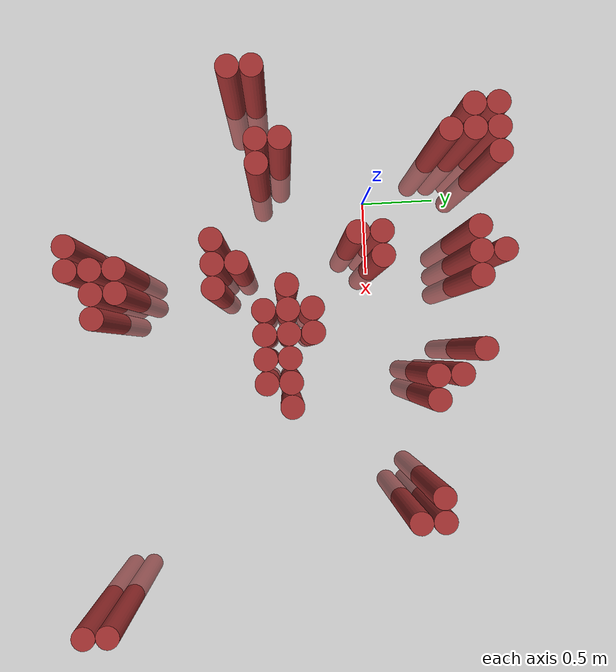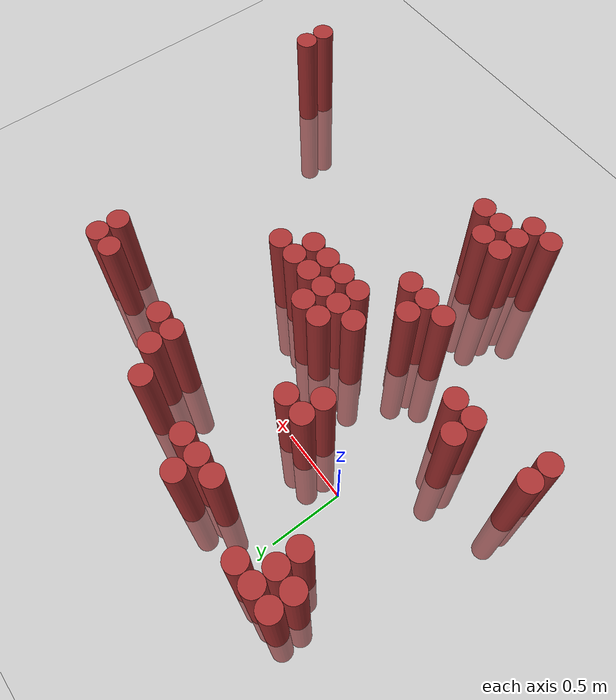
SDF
<sdf version="1.6">
 <world name="default">
  <model name="ground_plane">
   <static>1</static>
   <link name="link">
    <collision name="collision">
     <geometry><plane><normal>0 0 1</normal><size>100 100</size></plane></geometry>
     <surface><friction><ode><mu>100</mu><mu2>50</mu2></ode></friction></surface>
    </collision>
    <visual name="visual">
     <cast_shadows>0</cast_shadows>
     <geometry><plane><normal>0 0 1</normal><size>100 100</size></plane></geometry>
     <material>
      <script><uri>file://media/materials/scripts/gazebo.material</uri><name>Gazebo/Grey</name></script>
     </material>
    </visual>
   </link>
  </model>
  <model name="unit_cylinder_402">
   <static>1</static>
   <pose>-0.725000 -0.875000 0.000000 0.000000 0.000000 0.000000</pose>
   <link name="link">
    <inertial>
     <mass>1</mass>
     <inertia><ixx>0.145833</ixx><ixy>0</ixy><ixz>0</ixz><iyy>0.145833</iyy><iyz>0</iyz><izz>0.125</izz></inertia>
    </inertial>
    <collision name="collision">
     <geometry><cylinder><radius>0.075000</radius><length>1.5</length></cylinder></geometry>
    </collision>
    <visual name="visual">
     <geometry><cylinder><radius>0.075000</radius><length>1.5</length></cylinder></geometry>
     <material>
      <ambient>0.648000 0.192000 0.192000 1</ambient>
      <diffuse>0.648000 0.192000 0.192000 1</diffuse>
     </material>
     <material>
      <script><name>Gazebo/Grey</name><uri>file://media/materials/scripts/gazebo.material</uri></script>
     </material>
    </visual>
   </link>
  </model>
  <model name="unit_cylinder_403">
   <static>1</static>
   <pose>-0.725000 -0.725000 0.000000 0.000000 0.000000 0.000000</pose>
   <link name="link">
    <inertial>
     <mass>1</mass>
     <inertia><ixx>0.145833</ixx><ixy>0</ixy><ixz>0</ixz><iyy>0.145833</iyy><iyz>0</iyz><izz>0.125</izz></inertia>
    </inertial>
    <collision name="collision">
     <geometry><cylinder><radius>0.075000</radius><length>1.5</length></cylinder></geometry>
    </collision>
    <visual name="visual">
     <geometry><cylinder><radius>0.075000</radius><length>1.5</length></cylinder></geometry>
     <material>
      <ambient>0.648000 0.192000 0.192000 1</ambient>
      <diffuse>0.648000 0.192000 0.192000 1</diffuse>
     </material>
     <material>
      <script><name>Gazebo/Grey</name><uri>file://media/materials/scripts/gazebo.material</uri></script>
     </material>
    </visual>
   </link>
  </model>
  <model name="unit_cylinder_405">
   <static>1</static>
   <pose>-0.425000 0.625000 0.000000 0.000000 0.000000 0.000000</pose>
   <link name="link">
    <inertial>
     <mass>1</mass>
     <inertia><ixx>0.145833</ixx><ixy>0</ixy><ixz>0</ixz><iyy>0.145833</iyy><iyz>0</iyz><izz>0.125</izz></inertia>
    </inertial>
    <collision name="collision">
     <geometry><cylinder><radius>0.075000</radius><length>1.5</length></cylinder></geometry>
    </collision>
    <visual name="visual">
     <geometry><cylinder><radius>0.075000</radius><length>1.5</length></cylinder></geometry>
     <material>
      <ambient>0.648000 0.192000 0.192000 1</ambient>
      <diffuse>0.648000 0.192000 0.192000 1</diffuse>
     </material>
     <material>
      <script><name>Gazebo/Grey</name><uri>file://media/materials/scripts/gazebo.material</uri></script>
     </material>
    </visual>
   </link>
  </model>
  <model name="unit_cylinder_406">
   <static>1</static>
   <pose>-0.425000 0.775000 0.000000 0.000000 0.000000 0.000000</pose>
   <link name="link">
    <inertial>
     <mass>1</mass>
     <inertia><ixx>0.145833</ixx><ixy>0</ixy><ixz>0</ixz><iyy>0.145833</iyy><iyz>0</iyz><izz>0.125</izz></inertia>
    </inertial>
    <collision name="collision">
     <geometry><cylinder><radius>0.075000</radius><length>1.5</length></cylinder></geometry>
    </collision>
    <visual name="visual">
     <geometry><cylinder><radius>0.075000</radius><length>1.5</length></cylinder></geometry>
     <material>
      <ambient>0.648000 0.192000 0.192000 1</ambient>
      <diffuse>0.648000 0.192000 0.192000 1</diffuse>
     </material>
     <material>
      <script><name>Gazebo/Grey</name><uri>file://media/materials/scripts/gazebo.material</uri></script>
     </material>
    </visual>
   </link>
  </model>
  <model name="unit_cylinder_410">
   <static>1</static>
   <pose>-0.275000 -0.725000 0.000000 0.000000 0.000000 0.000000</pose>
   <link name="link">
    <inertial>
     <mass>1</mass>
     <inertia><ixx>0.145833</ixx><ixy>0</ixy><ixz>0</ixz><iyy>0.145833</iyy><iyz>0</iyz><izz>0.125</izz></inertia>
    </inertial>
    <collision name="collision">
     <geometry><cylinder><radius>0.075000</radius><length>1.5</length></cylinder></geometry>
    </collision>
    <visual name="visual">
     <geometry><cylinder><radius>0.075000</radius><length>1.5</length></cylinder></geometry>
     <material>
      <ambient>0.648000 0.192000 0.192000 1</ambient>
      <diffuse>0.648000 0.192000 0.192000 1</diffuse>
     </material>
     <material>
      <script><name>Gazebo/Grey</name><uri>file://media/materials/scripts/gazebo.material</uri></script>
     </material>
    </visual>
   </link>
  </model>
  <model name="unit_cylinder_411">
   <static>1</static>
   <pose>-0.275000 -0.575000 0.000000 0.000000 0.000000 0.000000</pose>
   <link name="link">
    <inertial>
     <mass>1</mass>
     <inertia><ixx>0.145833</ixx><ixy>0</ixy><ixz>0</ixz><iyy>0.145833</iyy><iyz>0</iyz><izz>0.125</izz></inertia>
    </inertial>
    <collision name="collision">
     <geometry><cylinder><radius>0.075000</radius><length>1.5</length></cylinder></geometry>
    </collision>
    <visual name="visual">
     <geometry><cylinder><radius>0.075000</radius><length>1.5</length></cylinder></geometry>
     <material>
      <ambient>0.648000 0.192000 0.192000 1</ambient>
      <diffuse>0.648000 0.192000 0.192000 1</diffuse>
     </material>
     <material>
      <script><name>Gazebo/Grey</name><uri>file://media/materials/scripts/gazebo.material</uri></script>
     </material>
    </visual>
   </link>
  </model>
  <model name="unit_cylinder_412">
   <static>1</static>
   <pose>-0.275000 0.475000 0.000000 0.000000 0.000000 0.000000</pose>
   <link name="link">
    <inertial>
     <mass>1</mass>
     <inertia><ixx>0.145833</ixx><ixy>0</ixy><ixz>0</ixz><iyy>0.145833</iyy><iyz>0</iyz><izz>0.125</izz></inertia>
    </inertial>
    <collision name="collision">
     <geometry><cylinder><radius>0.075000</radius><length>1.5</length></cylinder></geometry>
    </collision>
    <visual name="visual">
     <geometry><cylinder><radius>0.075000</radius><length>1.5</length></cylinder></geometry>
     <material>
      <ambient>0.648000 0.192000 0.192000 1</ambient>
      <diffuse>0.648000 0.192000 0.192000 1</diffuse>
     </material>
     <material>
      <script><name>Gazebo/Grey</name><uri>file://media/materials/scripts/gazebo.material</uri></script>
     </material>
    </visual>
   </link>
  </model>
  <model name="unit_cylinder_413">
   <static>1</static>
   <pose>-0.275000 0.625000 0.000000 0.000000 0.000000 0.000000</pose>
   <link name="link">
    <inertial>
     <mass>1</mass>
     <inertia><ixx>0.145833</ixx><ixy>0</ixy><ixz>0</ixz><iyy>0.145833</iyy><iyz>0</iyz><izz>0.125</izz></inertia>
    </inertial>
    <collision name="collision">
     <geometry><cylinder><radius>0.075000</radius><length>1.5</length></cylinder></geometry>
    </collision>
    <visual name="visual">
     <geometry><cylinder><radius>0.075000</radius><length>1.5</length></cylinder></geometry>
     <material>
      <ambient>0.648000 0.192000 0.192000 1</ambient>
      <diffuse>0.648000 0.192000 0.192000 1</diffuse>
     </material>
     <material>
      <script><name>Gazebo/Grey</name><uri>file://media/materials/scripts/gazebo.material</uri></script>
     </material>
    </visual>
   </link>
  </model>
  <model name="unit_cylinder_414">
   <static>1</static>
   <pose>-0.275000 0.775000 0.000000 0.000000 0.000000 0.000000</pose>
   <link name="link">
    <inertial>
     <mass>1</mass>
     <inertia><ixx>0.145833</ixx><ixy>0</ixy><ixz>0</ixz><iyy>0.145833</iyy><iyz>0</iyz><izz>0.125</izz></inertia>
    </inertial>
    <collision name="collision">
     <geometry><cylinder><radius>0.075000</radius><length>1.5</length></cylinder></geometry>
    </collision>
    <visual name="visual">
     <geometry><cylinder><radius>0.075000</radius><length>1.5</length></cylinder></geometry>
     <material>
      <ambient>0.648000 0.192000 0.192000 1</ambient>
      <diffuse>0.648000 0.192000 0.192000 1</diffuse>
     </material>
     <material>
      <script><name>Gazebo/Grey</name><uri>file://media/materials/scripts/gazebo.material</uri></script>
     </material>
    </visual>
   </link>
  </model>
  <model name="unit_cylinder_417">
   <static>1</static>
   <pose>-0.125000 -0.725000 0.000000 0.000000 0.000000 0.000000</pose>
   <link name="link">
    <inertial>
     <mass>1</mass>
     <inertia><ixx>0.145833</ixx><ixy>0</ixy><ixz>0</ixz><iyy>0.145833</iyy><iyz>0</iyz><izz>0.125</izz></inertia>
    </inertial>
    <collision name="collision">
     <geometry><cylinder><radius>0.075000</radius><length>1.5</length></cylinder></geometry>
    </collision>
    <visual name="visual">
     <geometry><cylinder><radius>0.075000</radius><length>1.5</length></cylinder></geometry>
     <material>
      <ambient>0.648000 0.192000 0.192000 1</ambient>
      <diffuse>0.648000 0.192000 0.192000 1</diffuse>
     </material>
     <material>
      <script><name>Gazebo/Grey</name><uri>file://media/materials/scripts/gazebo.material</uri></script>
     </material>
    </visual>
   </link>
  </model>
  <model name="unit_cylinder_418">
   <static>1</static>
   <pose>-0.125000 0.775000 0.000000 0.000000 0.000000 0.000000</pose>
   <link name="link">
    <inertial>
     <mass>1</mass>
     <inertia><ixx>0.145833</ixx><ixy>0</ixy><ixz>0</ixz><iyy>0.145833</iyy><iyz>0</iyz><izz>0.125</izz></inertia>
    </inertial>
    <collision name="collision">
     <geometry><cylinder><radius>0.075000</radius><length>1.5</length></cylinder></geometry>
    </collision>
    <visual name="visual">
     <geometry><cylinder><radius>0.075000</radius><length>1.5</length></cylinder></geometry>
     <material>
      <ambient>0.648000 0.192000 0.192000 1</ambient>
      <diffuse>0.648000 0.192000 0.192000 1</diffuse>
     </material>
     <material>
      <script><name>Gazebo/Grey</name><uri>file://media/materials/scripts/gazebo.material</uri></script>
     </material>
    </visual>
   </link>
  </model>
  <model name="unit_cylinder_424">
   <static>1</static>
   <pose>0.325000 -1.925000 0.000000 0.000000 0.000000 0.000000</pose>
   <link name="link">
    <inertial>
     <mass>1</mass>
     <inertia><ixx>0.145833</ixx><ixy>0</ixy><ixz>0</ixz><iyy>0.145833</iyy><iyz>0</iyz><izz>0.125</izz></inertia>
    </inertial>
    <collision name="collision">
     <geometry><cylinder><radius>0.075000</radius><length>1.5</length></cylinder></geometry>
    </collision>
    <visual name="visual">
     <geometry><cylinder><radius>0.075000</radius><length>1.5</length></cylinder></geometry>
     <material>
      <ambient>0.648000 0.192000 0.192000 1</ambient>
      <diffuse>0.648000 0.192000 0.192000 1</diffuse>
     </material>
     <material>
      <script><name>Gazebo/Grey</name><uri>file://media/materials/scripts/gazebo.material</uri></script>
     </material>
    </visual>
   </link>
  </model>
  <model name="unit_cylinder_425">
   <static>1</static>
   <pose>0.325000 -1.025000 0.000000 0.000000 0.000000 0.000000</pose>
   <link name="link">
    <inertial>
     <mass>1</mass>
     <inertia><ixx>0.145833</ixx><ixy>0</ixy><ixz>0</ixz><iyy>0.145833</iyy><iyz>0</iyz><izz>0.125</izz></inertia>
    </inertial>
    <collision name="collision">
     <geometry><cylinder><radius>0.075000</radius><length>1.5</length></cylinder></geometry>
    </collision>
    <visual name="visual">
     <geometry><cylinder><radius>0.075000</radius><length>1.5</length></cylinder></geometry>
     <material>
      <ambient>0.648000 0.192000 0.192000 1</ambient>
      <diffuse>0.648000 0.192000 0.192000 1</diffuse>
     </material>
     <material>
      <script><name>Gazebo/Grey</name><uri>file://media/materials/scripts/gazebo.material</uri></script>
     </material>
    </visual>
   </link>
  </model>
  <model name="unit_cylinder_426">
   <static>1</static>
   <pose>0.325000 -0.125000 0.000000 0.000000 0.000000 0.000000</pose>
   <link name="link">
    <inertial>
     <mass>1</mass>
     <inertia><ixx>0.145833</ixx><ixy>0</ixy><ixz>0</ixz><iyy>0.145833</iyy><iyz>0</iyz><izz>0.125</izz></inertia>
    </inertial>
    <collision name="collision">
     <geometry><cylinder><radius>0.075000</radius><length>1.5</length></cylinder></geometry>
    </collision>
    <visual name="visual">
     <geometry><cylinder><radius>0.075000</radius><length>1.5</length></cylinder></geometry>
     <material>
      <ambient>0.648000 0.192000 0.192000 1</ambient>
      <diffuse>0.648000 0.192000 0.192000 1</diffuse>
     </material>
     <material>
      <script><name>Gazebo/Grey</name><uri>file://media/materials/scripts/gazebo.material</uri></script>
     </material>
    </visual>
   </link>
  </model>
  <model name="unit_cylinder_427">
   <static>1</static>
   <pose>0.325000 0.025000 0.000000 0.000000 0.000000 0.000000</pose>
   <link name="link">
    <inertial>
     <mass>1</mass>
     <inertia><ixx>0.145833</ixx><ixy>0</ixy><ixz>0</ixz><iyy>0.145833</iyy><iyz>0</iyz><izz>0.125</izz></inertia>
    </inertial>
    <collision name="collision">
     <geometry><cylinder><radius>0.075000</radius><length>1.5</length></cylinder></geometry>
    </collision>
    <visual name="visual">
     <geometry><cylinder><radius>0.075000</radius><length>1.5</length></cylinder></geometry>
     <material>
      <ambient>0.648000 0.192000 0.192000 1</ambient>
      <diffuse>0.648000 0.192000 0.192000 1</diffuse>
     </material>
     <material>
      <script><name>Gazebo/Grey</name><uri>file://media/materials/scripts/gazebo.material</uri></script>
     </material>
    </visual>
   </link>
  </model>
  <model name="unit_cylinder_428">
   <static>1</static>
   <pose>0.325000 0.625000 0.000000 0.000000 0.000000 0.000000</pose>
   <link name="link">
    <inertial>
     <mass>1</mass>
     <inertia><ixx>0.145833</ixx><ixy>0</ixy><ixz>0</ixz><iyy>0.145833</iyy><iyz>0</iyz><izz>0.125</izz></inertia>
    </inertial>
    <collision name="collision">
     <geometry><cylinder><radius>0.075000</radius><length>1.5</length></cylinder></geometry>
    </collision>
    <visual name="visual">
     <geometry><cylinder><radius>0.075000</radius><length>1.5</length></cylinder></geometry>
     <material>
      <ambient>0.648000 0.192000 0.192000 1</ambient>
      <diffuse>0.648000 0.192000 0.192000 1</diffuse>
     </material>
     <material>
      <script><name>Gazebo/Grey</name><uri>file://media/materials/scripts/gazebo.material</uri></script>
     </material>
    </visual>
   </link>
  </model>
  <model name="unit_cylinder_431">
   <static>1</static>
   <pose>0.475000 -1.925000 0.000000 0.000000 0.000000 0.000000</pose>
   <link name="link">
    <inertial>
     <mass>1</mass>
     <inertia><ixx>0.145833</ixx><ixy>0</ixy><ixz>0</ixz><iyy>0.145833</iyy><iyz>0</iyz><izz>0.125</izz></inertia>
    </inertial>
    <collision name="collision">
     <geometry><cylinder><radius>0.075000</radius><length>1.5</length></cylinder></geometry>
    </collision>
    <visual name="visual">
     <geometry><cylinder><radius>0.075000</radius><length>1.5</length></cylinder></geometry>
     <material>
      <ambient>0.648000 0.192000 0.192000 1</ambient>
      <diffuse>0.648000 0.192000 0.192000 1</diffuse>
     </material>
     <material>
      <script><name>Gazebo/Grey</name><uri>file://media/materials/scripts/gazebo.material</uri></script>
     </material>
    </visual>
   </link>
  </model>
  <model name="unit_cylinder_432">
   <static>1</static>
   <pose>0.475000 -1.775000 0.000000 0.000000 0.000000 0.000000</pose>
   <link name="link">
    <inertial>
     <mass>1</mass>
     <inertia><ixx>0.145833</ixx><ixy>0</ixy><ixz>0</ixz><iyy>0.145833</iyy><iyz>0</iyz><izz>0.125</izz></inertia>
    </inertial>
    <collision name="collision">
     <geometry><cylinder><radius>0.075000</radius><length>1.5</length></cylinder></geometry>
    </collision>
    <visual name="visual">
     <geometry><cylinder><radius>0.075000</radius><length>1.5</length></cylinder></geometry>
     <material>
      <ambient>0.648000 0.192000 0.192000 1</ambient>
      <diffuse>0.648000 0.192000 0.192000 1</diffuse>
     </material>
     <material>
      <script><name>Gazebo/Grey</name><uri>file://media/materials/scripts/gazebo.material</uri></script>
     </material>
    </visual>
   </link>
  </model>
  <model name="unit_cylinder_433">
   <static>1</static>
   <pose>0.475000 -1.625000 0.000000 0.000000 0.000000 0.000000</pose>
   <link name="link">
    <inertial>
     <mass>1</mass>
     <inertia><ixx>0.145833</ixx><ixy>0</ixy><ixz>0</ixz><iyy>0.145833</iyy><iyz>0</iyz><izz>0.125</izz></inertia>
    </inertial>
    <collision name="collision">
     <geometry><cylinder><radius>0.075000</radius><length>1.5</length></cylinder></geometry>
    </collision>
    <visual name="visual">
     <geometry><cylinder><radius>0.075000</radius><length>1.5</length></cylinder></geometry>
     <material>
      <ambient>0.648000 0.192000 0.192000 1</ambient>
      <diffuse>0.648000 0.192000 0.192000 1</diffuse>
     </material>
     <material>
      <script><name>Gazebo/Grey</name><uri>file://media/materials/scripts/gazebo.material</uri></script>
     </material>
    </visual>
   </link>
  </model>
  <model name="unit_cylinder_434">
   <static>1</static>
   <pose>0.475000 -1.025000 0.000000 0.000000 0.000000 0.000000</pose>
   <link name="link">
    <inertial>
     <mass>1</mass>
     <inertia><ixx>0.145833</ixx><ixy>0</ixy><ixz>0</ixz><iyy>0.145833</iyy><iyz>0</iyz><izz>0.125</izz></inertia>
    </inertial>
    <collision name="collision">
     <geometry><cylinder><radius>0.075000</radius><length>1.5</length></cylinder></geometry>
    </collision>
    <visual name="visual">
     <geometry><cylinder><radius>0.075000</radius><length>1.5</length></cylinder></geometry>
     <material>
      <ambient>0.648000 0.192000 0.192000 1</ambient>
      <diffuse>0.648000 0.192000 0.192000 1</diffuse>
     </material>
     <material>
      <script><name>Gazebo/Grey</name><uri>file://media/materials/scripts/gazebo.material</uri></script>
     </material>
    </visual>
   </link>
  </model>
  <model name="unit_cylinder_435">
   <static>1</static>
   <pose>0.475000 -0.875000 0.000000 0.000000 0.000000 0.000000</pose>
   <link name="link">
    <inertial>
     <mass>1</mass>
     <inertia><ixx>0.145833</ixx><ixy>0</ixy><ixz>0</ixz><iyy>0.145833</iyy><iyz>0</iyz><izz>0.125</izz></inertia>
    </inertial>
    <collision name="collision">
     <geometry><cylinder><radius>0.075000</radius><length>1.5</length></cylinder></geometry>
    </collision>
    <visual name="visual">
     <geometry><cylinder><radius>0.075000</radius><length>1.5</length></cylinder></geometry>
     <material>
      <ambient>0.648000 0.192000 0.192000 1</ambient>
      <diffuse>0.648000 0.192000 0.192000 1</diffuse>
     </material>
     <material>
      <script><name>Gazebo/Grey</name><uri>file://media/materials/scripts/gazebo.material</uri></script>
     </material>
    </visual>
   </link>
  </model>
  <model name="unit_cylinder_436">
   <static>1</static>
   <pose>0.475000 0.025000 0.000000 0.000000 0.000000 0.000000</pose>
   <link name="link">
    <inertial>
     <mass>1</mass>
     <inertia><ixx>0.145833</ixx><ixy>0</ixy><ixz>0</ixz><iyy>0.145833</iyy><iyz>0</iyz><izz>0.125</izz></inertia>
    </inertial>
    <collision name="collision">
     <geometry><cylinder><radius>0.075000</radius><length>1.5</length></cylinder></geometry>
    </collision>
    <visual name="visual">
     <geometry><cylinder><radius>0.075000</radius><length>1.5</length></cylinder></geometry>
     <material>
      <ambient>0.648000 0.192000 0.192000 1</ambient>
      <diffuse>0.648000 0.192000 0.192000 1</diffuse>
     </material>
     <material>
      <script><name>Gazebo/Grey</name><uri>file://media/materials/scripts/gazebo.material</uri></script>
     </material>
    </visual>
   </link>
  </model>
  <model name="unit_cylinder_437">
   <static>1</static>
   <pose>0.475000 0.625000 0.000000 0.000000 0.000000 0.000000</pose>
   <link name="link">
    <inertial>
     <mass>1</mass>
     <inertia><ixx>0.145833</ixx><ixy>0</ixy><ixz>0</ixz><iyy>0.145833</iyy><iyz>0</iyz><izz>0.125</izz></inertia>
    </inertial>
    <collision name="collision">
     <geometry><cylinder><radius>0.075000</radius><length>1.5</length></cylinder></geometry>
    </collision>
    <visual name="visual">
     <geometry><cylinder><radius>0.075000</radius><length>1.5</length></cylinder></geometry>
     <material>
      <ambient>0.648000 0.192000 0.192000 1</ambient>
      <diffuse>0.648000 0.192000 0.192000 1</diffuse>
     </material>
     <material>
      <script><name>Gazebo/Grey</name><uri>file://media/materials/scripts/gazebo.material</uri></script>
     </material>
    </visual>
   </link>
  </model>
  <model name="unit_cylinder_438">
   <static>1</static>
   <pose>0.475000 0.775000 0.000000 0.000000 0.000000 0.000000</pose>
   <link name="link">
    <inertial>
     <mass>1</mass>
     <inertia><ixx>0.145833</ixx><ixy>0</ixy><ixz>0</ixz><iyy>0.145833</iyy><iyz>0</iyz><izz>0.125</izz></inertia>
    </inertial>
    <collision name="collision">
     <geometry><cylinder><radius>0.075000</radius><length>1.5</length></cylinder></geometry>
    </collision>
    <visual name="visual">
     <geometry><cylinder><radius>0.075000</radius><length>1.5</length></cylinder></geometry>
     <material>
      <ambient>0.648000 0.192000 0.192000 1</ambient>
      <diffuse>0.648000 0.192000 0.192000 1</diffuse>
     </material>
     <material>
      <script><name>Gazebo/Grey</name><uri>file://media/materials/scripts/gazebo.material</uri></script>
     </material>
    </visual>
   </link>
  </model>
  <model name="unit_cylinder_439">
   <static>1</static>
   <pose>0.625000 -1.775000 0.000000 0.000000 0.000000 0.000000</pose>
   <link name="link">
    <inertial>
     <mass>1</mass>
     <inertia><ixx>0.145833</ixx><ixy>0</ixy><ixz>0</ixz><iyy>0.145833</iyy><iyz>0</iyz><izz>0.125</izz></inertia>
    </inertial>
    <collision name="collision">
     <geometry><cylinder><radius>0.075000</radius><length>1.5</length></cylinder></geometry>
    </collision>
    <visual name="visual">
     <geometry><cylinder><radius>0.075000</radius><length>1.5</length></cylinder></geometry>
     <material>
      <ambient>0.648000 0.192000 0.192000 1</ambient>
      <diffuse>0.648000 0.192000 0.192000 1</diffuse>
     </material>
     <material>
      <script><name>Gazebo/Grey</name><uri>file://media/materials/scripts/gazebo.material</uri></script>
     </material>
    </visual>
   </link>
  </model>
  <model name="unit_cylinder_440">
   <static>1</static>
   <pose>0.625000 -1.625000 0.000000 0.000000 0.000000 0.000000</pose>
   <link name="link">
    <inertial>
     <mass>1</mass>
     <inertia><ixx>0.145833</ixx><ixy>0</ixy><ixz>0</ixz><iyy>0.145833</iyy><iyz>0</iyz><izz>0.125</izz></inertia>
    </inertial>
    <collision name="collision">
     <geometry><cylinder><radius>0.075000</radius><length>1.5</length></cylinder></geometry>
    </collision>
    <visual name="visual">
     <geometry><cylinder><radius>0.075000</radius><length>1.5</length></cylinder></geometry>
     <material>
      <ambient>0.648000 0.192000 0.192000 1</ambient>
      <diffuse>0.648000 0.192000 0.192000 1</diffuse>
     </material>
     <material>
      <script><name>Gazebo/Grey</name><uri>file://media/materials/scripts/gazebo.material</uri></script>
     </material>
    </visual>
   </link>
  </model>
  <model name="unit_cylinder_441">
   <static>1</static>
   <pose>0.625000 -1.025000 0.000000 0.000000 0.000000 0.000000</pose>
   <link name="link">
    <inertial>
     <mass>1</mass>
     <inertia><ixx>0.145833</ixx><ixy>0</ixy><ixz>0</ixz><iyy>0.145833</iyy><iyz>0</iyz><izz>0.125</izz></inertia>
    </inertial>
    <collision name="collision">
     <geometry><cylinder><radius>0.075000</radius><length>1.5</length></cylinder></geometry>
    </collision>
    <visual name="visual">
     <geometry><cylinder><radius>0.075000</radius><length>1.5</length></cylinder></geometry>
     <material>
      <ambient>0.648000 0.192000 0.192000 1</ambient>
      <diffuse>0.648000 0.192000 0.192000 1</diffuse>
     </material>
     <material>
      <script><name>Gazebo/Grey</name><uri>file://media/materials/scripts/gazebo.material</uri></script>
     </material>
    </visual>
   </link>
  </model>
  <model name="unit_cylinder_442">
   <static>1</static>
   <pose>0.625000 -0.575000 0.000000 0.000000 0.000000 0.000000</pose>
   <link name="link">
    <inertial>
     <mass>1</mass>
     <inertia><ixx>0.145833</ixx><ixy>0</ixy><ixz>0</ixz><iyy>0.145833</iyy><iyz>0</iyz><izz>0.125</izz></inertia>
    </inertial>
    <collision name="collision">
     <geometry><cylinder><radius>0.075000</radius><length>1.5</length></cylinder></geometry>
    </collision>
    <visual name="visual">
     <geometry><cylinder><radius>0.075000</radius><length>1.5</length></cylinder></geometry>
     <material>
      <ambient>0.648000 0.192000 0.192000 1</ambient>
      <diffuse>0.648000 0.192000 0.192000 1</diffuse>
     </material>
     <material>
      <script><name>Gazebo/Grey</name><uri>file://media/materials/scripts/gazebo.material</uri></script>
     </material>
    </visual>
   </link>
  </model>
  <model name="unit_cylinder_443">
   <static>1</static>
   <pose>0.625000 0.625000 0.000000 0.000000 0.000000 0.000000</pose>
   <link name="link">
    <inertial>
     <mass>1</mass>
     <inertia><ixx>0.145833</ixx><ixy>0</ixy><ixz>0</ixz><iyy>0.145833</iyy><iyz>0</iyz><izz>0.125</izz></inertia>
    </inertial>
    <collision name="collision">
     <geometry><cylinder><radius>0.075000</radius><length>1.5</length></cylinder></geometry>
    </collision>
    <visual name="visual">
     <geometry><cylinder><radius>0.075000</radius><length>1.5</length></cylinder></geometry>
     <material>
      <ambient>0.648000 0.192000 0.192000 1</ambient>
      <diffuse>0.648000 0.192000 0.192000 1</diffuse>
     </material>
     <material>
      <script><name>Gazebo/Grey</name><uri>file://media/materials/scripts/gazebo.material</uri></script>
     </material>
    </visual>
   </link>
  </model>
  <model name="unit_cylinder_447">
   <static>1</static>
   <pose>0.775000 -1.775000 0.000000 0.000000 0.000000 0.000000</pose>
   <link name="link">
    <inertial>
     <mass>1</mass>
     <inertia><ixx>0.145833</ixx><ixy>0</ixy><ixz>0</ixz><iyy>0.145833</iyy><iyz>0</iyz><izz>0.125</izz></inertia>
    </inertial>
    <collision name="collision">
     <geometry><cylinder><radius>0.075000</radius><length>1.5</length></cylinder></geometry>
    </collision>
    <visual name="visual">
     <geometry><cylinder><radius>0.075000</radius><length>1.5</length></cylinder></geometry>
     <material>
      <ambient>0.648000 0.192000 0.192000 1</ambient>
      <diffuse>0.648000 0.192000 0.192000 1</diffuse>
     </material>
     <material>
      <script><name>Gazebo/Grey</name><uri>file://media/materials/scripts/gazebo.material</uri></script>
     </material>
    </visual>
   </link>
  </model>
  <model name="unit_cylinder_448">
   <static>1</static>
   <pose>0.775000 -0.725000 0.000000 0.000000 0.000000 0.000000</pose>
   <link name="link">
    <inertial>
     <mass>1</mass>
     <inertia><ixx>0.145833</ixx><ixy>0</ixy><ixz>0</ixz><iyy>0.145833</iyy><iyz>0</iyz><izz>0.125</izz></inertia>
    </inertial>
    <collision name="collision">
     <geometry><cylinder><radius>0.075000</radius><length>1.5</length></cylinder></geometry>
    </collision>
    <visual name="visual">
     <geometry><cylinder><radius>0.075000</radius><length>1.5</length></cylinder></geometry>
     <material>
      <ambient>0.648000 0.192000 0.192000 1</ambient>
      <diffuse>0.648000 0.192000 0.192000 1</diffuse>
     </material>
     <material>
      <script><name>Gazebo/Grey</name><uri>file://media/materials/scripts/gazebo.material</uri></script>
     </material>
    </visual>
   </link>
  </model>
  <model name="unit_cylinder_449">
   <static>1</static>
   <pose>0.775000 -0.575000 0.000000 0.000000 0.000000 0.000000</pose>
   <link name="link">
    <inertial>
     <mass>1</mass>
     <inertia><ixx>0.145833</ixx><ixy>0</ixy><ixz>0</ixz><iyy>0.145833</iyy><iyz>0</iyz><izz>0.125</izz></inertia>
    </inertial>
    <collision name="collision">
     <geometry><cylinder><radius>0.075000</radius><length>1.5</length></cylinder></geometry>
    </collision>
    <visual name="visual">
     <geometry><cylinder><radius>0.075000</radius><length>1.5</length></cylinder></geometry>
     <material>
      <ambient>0.648000 0.192000 0.192000 1</ambient>
      <diffuse>0.648000 0.192000 0.192000 1</diffuse>
     </material>
     <material>
      <script><name>Gazebo/Grey</name><uri>file://media/materials/scripts/gazebo.material</uri></script>
     </material>
    </visual>
   </link>
  </model>
  <model name="unit_cylinder_450">
   <static>1</static>
   <pose>0.775000 -0.425000 0.000000 0.000000 0.000000 0.000000</pose>
   <link name="link">
    <inertial>
     <mass>1</mass>
     <inertia><ixx>0.145833</ixx><ixy>0</ixy><ixz>0</ixz><iyy>0.145833</iyy><iyz>0</iyz><izz>0.125</izz></inertia>
    </inertial>
    <collision name="collision">
     <geometry><cylinder><radius>0.075000</radius><length>1.5</length></cylinder></geometry>
    </collision>
    <visual name="visual">
     <geometry><cylinder><radius>0.075000</radius><length>1.5</length></cylinder></geometry>
     <material>
      <ambient>0.648000 0.192000 0.192000 1</ambient>
      <diffuse>0.648000 0.192000 0.192000 1</diffuse>
     </material>
     <material>
      <script><name>Gazebo/Grey</name><uri>file://media/materials/scripts/gazebo.material</uri></script>
     </material>
    </visual>
   </link>
  </model>
  <model name="unit_cylinder_456">
   <static>1</static>
   <pose>0.925000 -0.725000 0.000000 0.000000 0.000000 0.000000</pose>
   <link name="link">
    <inertial>
     <mass>1</mass>
     <inertia><ixx>0.145833</ixx><ixy>0</ixy><ixz>0</ixz><iyy>0.145833</iyy><iyz>0</iyz><izz>0.125</izz></inertia>
    </inertial>
    <collision name="collision">
     <geometry><cylinder><radius>0.075000</radius><length>1.5</length></cylinder></geometry>
    </collision>
    <visual name="visual">
     <geometry><cylinder><radius>0.075000</radius><length>1.5</length></cylinder></geometry>
     <material>
      <ambient>0.648000 0.192000 0.192000 1</ambient>
      <diffuse>0.648000 0.192000 0.192000 1</diffuse>
     </material>
     <material>
      <script><name>Gazebo/Grey</name><uri>file://media/materials/scripts/gazebo.material</uri></script>
     </material>
    </visual>
   </link>
  </model>
  <model name="unit_cylinder_457">
   <static>1</static>
   <pose>0.925000 -0.575000 0.000000 0.000000 0.000000 0.000000</pose>
   <link name="link">
    <inertial>
     <mass>1</mass>
     <inertia><ixx>0.145833</ixx><ixy>0</ixy><ixz>0</ixz><iyy>0.145833</iyy><iyz>0</iyz><izz>0.125</izz></inertia>
    </inertial>
    <collision name="collision">
     <geometry><cylinder><radius>0.075000</radius><length>1.5</length></cylinder></geometry>
    </collision>
    <visual name="visual">
     <geometry><cylinder><radius>0.075000</radius><length>1.5</length></cylinder></geometry>
     <material>
      <ambient>0.648000 0.192000 0.192000 1</ambient>
      <diffuse>0.648000 0.192000 0.192000 1</diffuse>
     </material>
     <material>
      <script><name>Gazebo/Grey</name><uri>file://media/materials/scripts/gazebo.material</uri></script>
     </material>
    </visual>
   </link>
  </model>
  <model name="unit_cylinder_458">
   <static>1</static>
   <pose>0.925000 -0.425000 0.000000 0.000000 0.000000 0.000000</pose>
   <link name="link">
    <inertial>
     <mass>1</mass>
     <inertia><ixx>0.145833</ixx><ixy>0</ixy><ixz>0</ixz><iyy>0.145833</iyy><iyz>0</iyz><izz>0.125</izz></inertia>
    </inertial>
    <collision name="collision">
     <geometry><cylinder><radius>0.075000</radius><length>1.5</length></cylinder></geometry>
    </collision>
    <visual name="visual">
     <geometry><cylinder><radius>0.075000</radius><length>1.5</length></cylinder></geometry>
     <material>
      <ambient>0.648000 0.192000 0.192000 1</ambient>
      <diffuse>0.648000 0.192000 0.192000 1</diffuse>
     </material>
     <material>
      <script><name>Gazebo/Grey</name><uri>file://media/materials/scripts/gazebo.material</uri></script>
     </material>
    </visual>
   </link>
  </model>
  <model name="unit_cylinder_463">
   <static>1</static>
   <pose>1.075000 -0.725000 0.000000 0.000000 0.000000 0.000000</pose>
   <link name="link">
    <inertial>
     <mass>1</mass>
     <inertia><ixx>0.145833</ixx><ixy>0</ixy><ixz>0</ixz><iyy>0.145833</iyy><iyz>0</iyz><izz>0.125</izz></inertia>
    </inertial>
    <collision name="collision">
     <geometry><cylinder><radius>0.075000</radius><length>1.5</length></cylinder></geometry>
    </collision>
    <visual name="visual">
     <geometry><cylinder><radius>0.075000</radius><length>1.5</length></cylinder></geometry>
     <material>
      <ambient>0.648000 0.192000 0.192000 1</ambient>
      <diffuse>0.648000 0.192000 0.192000 1</diffuse>
     </material>
     <material>
      <script><name>Gazebo/Grey</name><uri>file://media/materials/scripts/gazebo.material</uri></script>
     </material>
    </visual>
   </link>
  </model>
  <model name="unit_cylinder_464">
   <static>1</static>
   <pose>1.075000 -0.575000 0.000000 0.000000 0.000000 0.000000</pose>
   <link name="link">
    <inertial>
     <mass>1</mass>
     <inertia><ixx>0.145833</ixx><ixy>0</ixy><ixz>0</ixz><iyy>0.145833</iyy><iyz>0</iyz><izz>0.125</izz></inertia>
    </inertial>
    <collision name="collision">
     <geometry><cylinder><radius>0.075000</radius><length>1.5</length></cylinder></geometry>
    </collision>
    <visual name="visual">
     <geometry><cylinder><radius>0.075000</radius><length>1.5</length></cylinder></geometry>
     <material>
      <ambient>0.648000 0.192000 0.192000 1</ambient>
      <diffuse>0.648000 0.192000 0.192000 1</diffuse>
     </material>
     <material>
      <script><name>Gazebo/Grey</name><uri>file://media/materials/scripts/gazebo.material</uri></script>
     </material>
    </visual>
   </link>
  </model>
  <model name="unit_cylinder_465">
   <static>1</static>
   <pose>1.075000 0.625000 0.000000 0.000000 0.000000 0.000000</pose>
   <link name="link">
    <inertial>
     <mass>1</mass>
     <inertia><ixx>0.145833</ixx><ixy>0</ixy><ixz>0</ixz><iyy>0.145833</iyy><iyz>0</iyz><izz>0.125</izz></inertia>
    </inertial>
    <collision name="collision">
     <geometry><cylinder><radius>0.075000</radius><length>1.5</length></cylinder></geometry>
    </collision>
    <visual name="visual">
     <geometry><cylinder><radius>0.075000</radius><length>1.5</length></cylinder></geometry>
     <material>
      <ambient>0.648000 0.192000 0.192000 1</ambient>
      <diffuse>0.648000 0.192000 0.192000 1</diffuse>
     </material>
     <material>
      <script><name>Gazebo/Grey</name><uri>file://media/materials/scripts/gazebo.material</uri></script>
     </material>
    </visual>
   </link>
  </model>
  <model name="unit_cylinder_467">
   <static>1</static>
   <pose>1.225000 -0.725000 0.000000 0.000000 0.000000 0.000000</pose>
   <link name="link">
    <inertial>
     <mass>1</mass>
     <inertia><ixx>0.145833</ixx><ixy>0</ixy><ixz>0</ixz><iyy>0.145833</iyy><iyz>0</iyz><izz>0.125</izz></inertia>
    </inertial>
    <collision name="collision">
     <geometry><cylinder><radius>0.075000</radius><length>1.5</length></cylinder></geometry>
    </collision>
    <visual name="visual">
     <geometry><cylinder><radius>0.075000</radius><length>1.5</length></cylinder></geometry>
     <material>
      <ambient>0.648000 0.192000 0.192000 1</ambient>
      <diffuse>0.648000 0.192000 0.192000 1</diffuse>
     </material>
     <material>
      <script><name>Gazebo/Grey</name><uri>file://media/materials/scripts/gazebo.material</uri></script>
     </material>
    </visual>
   </link>
  </model>
  <model name="unit_cylinder_468">
   <static>1</static>
   <pose>1.225000 -0.575000 0.000000 0.000000 0.000000 0.000000</pose>
   <link name="link">
    <inertial>
     <mass>1</mass>
     <inertia><ixx>0.145833</ixx><ixy>0</ixy><ixz>0</ixz><iyy>0.145833</iyy><iyz>0</iyz><izz>0.125</izz></inertia>
    </inertial>
    <collision name="collision">
     <geometry><cylinder><radius>0.075000</radius><length>1.5</length></cylinder></geometry>
    </collision>
    <visual name="visual">
     <geometry><cylinder><radius>0.075000</radius><length>1.5</length></cylinder></geometry>
     <material>
      <ambient>0.648000 0.192000 0.192000 1</ambient>
      <diffuse>0.648000 0.192000 0.192000 1</diffuse>
     </material>
     <material>
      <script><name>Gazebo/Grey</name><uri>file://media/materials/scripts/gazebo.material</uri></script>
     </material>
    </visual>
   </link>
  </model>
  <model name="unit_cylinder_469">
   <static>1</static>
   <pose>1.225000 0.325000 0.000000 0.000000 0.000000 0.000000</pose>
   <link name="link">
    <inertial>
     <mass>1</mass>
     <inertia><ixx>0.145833</ixx><ixy>0</ixy><ixz>0</ixz><iyy>0.145833</iyy><iyz>0</iyz><izz>0.125</izz></inertia>
    </inertial>
    <collision name="collision">
     <geometry><cylinder><radius>0.075000</radius><length>1.5</length></cylinder></geometry>
    </collision>
    <visual name="visual">
     <geometry><cylinder><radius>0.075000</radius><length>1.5</length></cylinder></geometry>
     <material>
      <ambient>0.648000 0.192000 0.192000 1</ambient>
      <diffuse>0.648000 0.192000 0.192000 1</diffuse>
     </material>
     <material>
      <script><name>Gazebo/Grey</name><uri>file://media/materials/scripts/gazebo.material</uri></script>
     </material>
    </visual>
   </link>
  </model>
  <model name="unit_cylinder_470">
   <static>1</static>
   <pose>1.225000 0.475000 0.000000 0.000000 0.000000 0.000000</pose>
   <link name="link">
    <inertial>
     <mass>1</mass>
     <inertia><ixx>0.145833</ixx><ixy>0</ixy><ixz>0</ixz><iyy>0.145833</iyy><iyz>0</iyz><izz>0.125</izz></inertia>
    </inertial>
    <collision name="collision">
     <geometry><cylinder><radius>0.075000</radius><length>1.5</length></cylinder></geometry>
    </collision>
    <visual name="visual">
     <geometry><cylinder><radius>0.075000</radius><length>1.5</length></cylinder></geometry>
     <material>
      <ambient>0.648000 0.192000 0.192000 1</ambient>
      <diffuse>0.648000 0.192000 0.192000 1</diffuse>
     </material>
     <material>
      <script><name>Gazebo/Grey</name><uri>file://media/materials/scripts/gazebo.material</uri></script>
     </material>
    </visual>
   </link>
  </model>
  <model name="unit_cylinder_471">
   <static>1</static>
   <pose>1.375000 -0.575000 0.000000 0.000000 0.000000 0.000000</pose>
   <link name="link">
    <inertial>
     <mass>1</mass>
     <inertia><ixx>0.145833</ixx><ixy>0</ixy><ixz>0</ixz><iyy>0.145833</iyy><iyz>0</iyz><izz>0.125</izz></inertia>
    </inertial>
    <collision name="collision">
     <geometry><cylinder><radius>0.075000</radius><length>1.5</length></cylinder></geometry>
    </collision>
    <visual name="visual">
     <geometry><cylinder><radius>0.075000</radius><length>1.5</length></cylinder></geometry>
     <material>
      <ambient>0.648000 0.192000 0.192000 1</ambient>
      <diffuse>0.648000 0.192000 0.192000 1</diffuse>
     </material>
     <material>
      <script><name>Gazebo/Grey</name><uri>file://media/materials/scripts/gazebo.material</uri></script>
     </material>
    </visual>
   </link>
  </model>
  <model name="unit_cylinder_472">
   <static>1</static>
   <pose>1.375000 0.325000 0.000000 0.000000 0.000000 0.000000</pose>
   <link name="link">
    <inertial>
     <mass>1</mass>
     <inertia><ixx>0.145833</ixx><ixy>0</ixy><ixz>0</ixz><iyy>0.145833</iyy><iyz>0</iyz><izz>0.125</izz></inertia>
    </inertial>
    <collision name="collision">
     <geometry><cylinder><radius>0.075000</radius><length>1.5</length></cylinder></geometry>
    </collision>
    <visual name="visual">
     <geometry><cylinder><radius>0.075000</radius><length>1.5</length></cylinder></geometry>
     <material>
      <ambient>0.648000 0.192000 0.192000 1</ambient>
      <diffuse>0.648000 0.192000 0.192000 1</diffuse>
     </material>
     <material>
      <script><name>Gazebo/Grey</name><uri>file://media/materials/scripts/gazebo.material</uri></script>
     </material>
    </visual>
   </link>
  </model>
  <model name="unit_cylinder_482">
   <static>1</static>
   <pose>1.975000 0.325000 0.000000 0.000000 0.000000 0.000000</pose>
   <link name="link">
    <inertial>
     <mass>1</mass>
     <inertia><ixx>0.145833</ixx><ixy>0</ixy><ixz>0</ixz><iyy>0.145833</iyy><iyz>0</iyz><izz>0.125</izz></inertia>
    </inertial>
    <collision name="collision">
     <geometry><cylinder><radius>0.075000</radius><length>1.5</length></cylinder></geometry>
    </collision>
    <visual name="visual">
     <geometry><cylinder><radius>0.075000</radius><length>1.5</length></cylinder></geometry>
     <material>
      <ambient>0.648000 0.192000 0.192000 1</ambient>
      <diffuse>0.648000 0.192000 0.192000 1</diffuse>
     </material>
     <material>
      <script><name>Gazebo/Grey</name><uri>file://media/materials/scripts/gazebo.material</uri></script>
     </material>
    </visual>
   </link>
  </model>
  <model name="unit_cylinder_483">
   <static>1</static>
   <pose>2.125000 0.175000 0.000000 0.000000 0.000000 0.000000</pose>
   <link name="link">
    <inertial>
     <mass>1</mass>
     <inertia><ixx>0.145833</ixx><ixy>0</ixy><ixz>0</ixz><iyy>0.145833</iyy><iyz>0</iyz><izz>0.125</izz></inertia>
    </inertial>
    <collision name="collision">
     <geometry><cylinder><radius>0.075000</radius><length>1.5</length></cylinder></geometry>
    </collision>
    <visual name="visual">
     <geometry><cylinder><radius>0.075000</radius><length>1.5</length></cylinder></geometry>
     <material>
      <ambient>0.648000 0.192000 0.192000 1</ambient>
      <diffuse>0.648000 0.192000 0.192000 1</diffuse>
     </material>
     <material>
      <script><name>Gazebo/Grey</name><uri>file://media/materials/scripts/gazebo.material</uri></script>
     </material>
    </visual>
   </link>
  </model>
  <model name="unit_cylinder_484">
   <static>1</static>
   <pose>2.125000 0.325000 0.000000 0.000000 0.000000 0.000000</pose>
   <link name="link">
    <inertial>
     <mass>1</mass>
     <inertia><ixx>0.145833</ixx><ixy>0</ixy><ixz>0</ixz><iyy>0.145833</iyy><iyz>0</iyz><izz>0.125</izz></inertia>
    </inertial>
    <collision name="collision">
     <geometry><cylinder><radius>0.075000</radius><length>1.5</length></cylinder></geometry>
    </collision>
    <visual name="visual">
     <geometry><cylinder><radius>0.075000</radius><length>1.5</length></cylinder></geometry>
     <material>
      <ambient>0.648000 0.192000 0.192000 1</ambient>
      <diffuse>0.648000 0.192000 0.192000 1</diffuse>
     </material>
     <material>
      <script><name>Gazebo/Grey</name><uri>file://media/materials/scripts/gazebo.material</uri></script>
     </material>
    </visual>
   </link>
  </model>
  <model name="unit_cylinder_494">
   <static>1</static>
   <pose>2.725000 -1.925000 0.000000 0.000000 0.000000 0.000000</pose>
   <link name="link">
    <inertial>
     <mass>1</mass>
     <inertia><ixx>0.145833</ixx><ixy>0</ixy><ixz>0</ixz><iyy>0.145833</iyy><iyz>0</iyz><izz>0.125</izz></inertia>
    </inertial>
    <collision name="collision">
     <geometry><cylinder><radius>0.075000</radius><length>1.5</length></cylinder></geometry>
    </collision>
    <visual name="visual">
     <geometry><cylinder><radius>0.075000</radius><length>1.5</length></cylinder></geometry>
     <material>
      <ambient>0.648000 0.192000 0.192000 1</ambient>
      <diffuse>0.648000 0.192000 0.192000 1</diffuse>
     </material>
     <material>
      <script><name>Gazebo/Grey</name><uri>file://media/materials/scripts/gazebo.material</uri></script>
     </material>
    </visual>
   </link>
  </model>
  <model name="unit_cylinder_495">
   <static>1</static>
   <pose>2.725000 -1.775000 0.000000 0.000000 0.000000 0.000000</pose>
   <link name="link">
    <inertial>
     <mass>1</mass>
     <inertia><ixx>0.145833</ixx><ixy>0</ixy><ixz>0</ixz><iyy>0.145833</iyy><iyz>0</iyz><izz>0.125</izz></inertia>
    </inertial>
    <collision name="collision">
     <geometry><cylinder><radius>0.075000</radius><length>1.5</length></cylinder></geometry>
    </collision>
    <visual name="visual">
     <geometry><cylinder><radius>0.075000</radius><length>1.5</length></cylinder></geometry>
     <material>
      <ambient>0.648000 0.192000 0.192000 1</ambient>
      <diffuse>0.648000 0.192000 0.192000 1</diffuse>
     </material>
     <material>
      <script><name>Gazebo/Grey</name><uri>file://media/materials/scripts/gazebo.material</uri></script>
     </material>
    </visual>
   </link>
  </model>
 </world>
</sdf>
